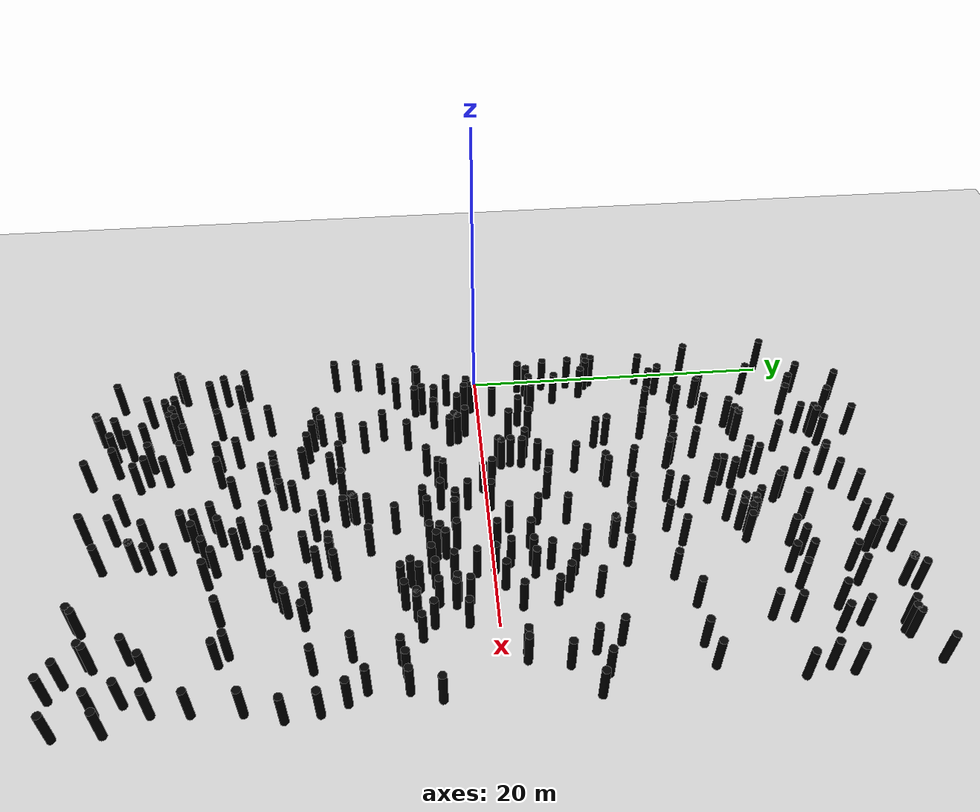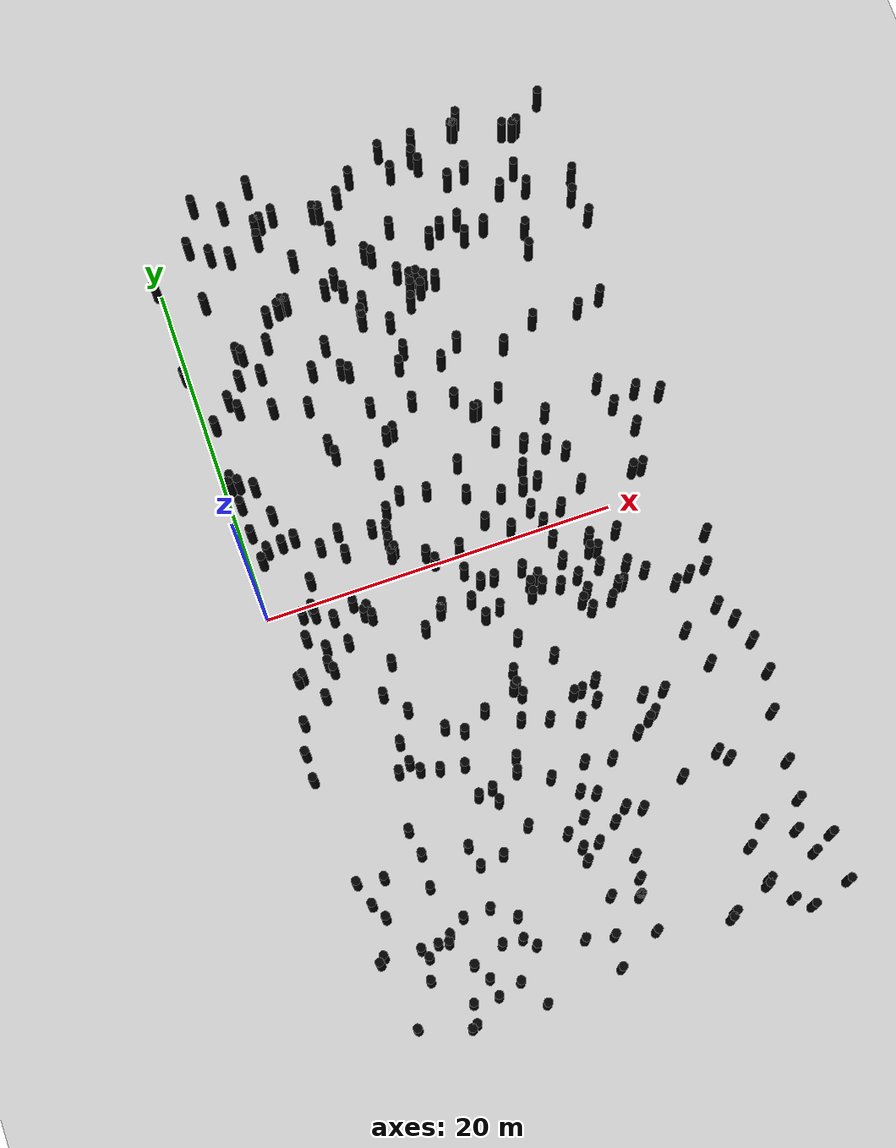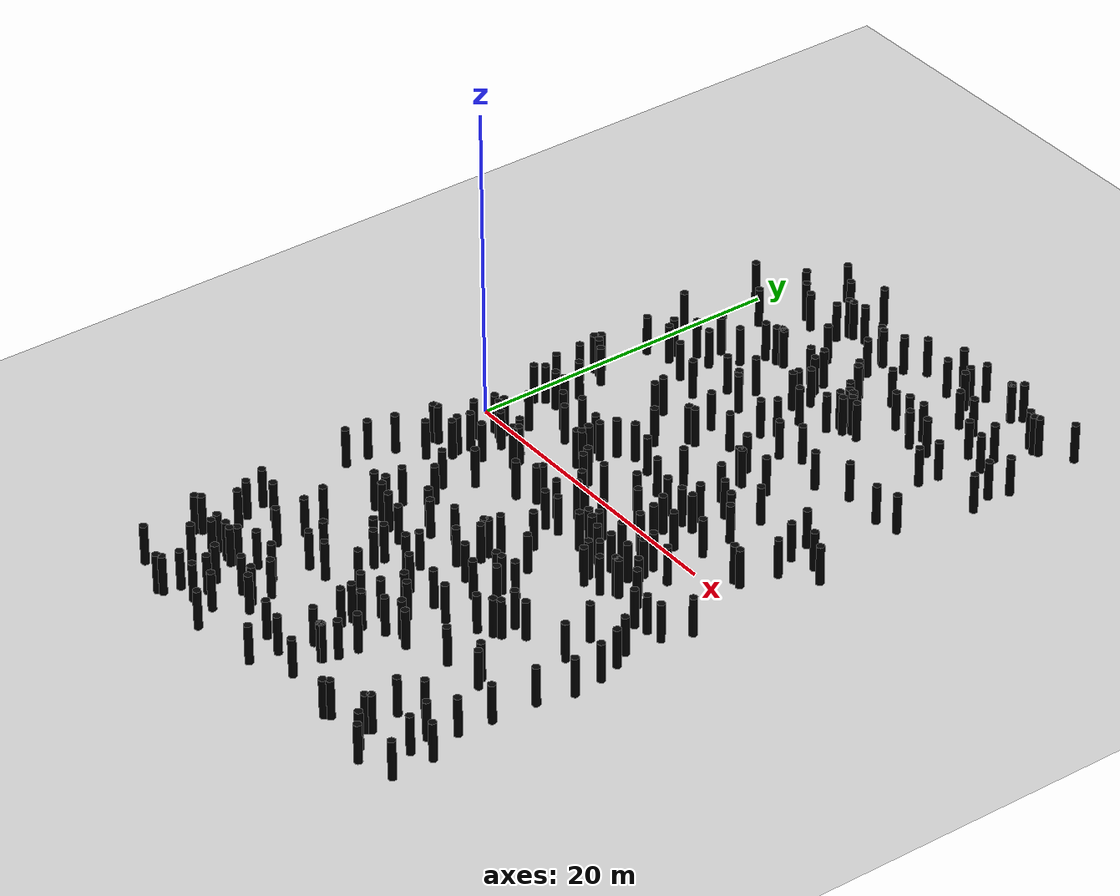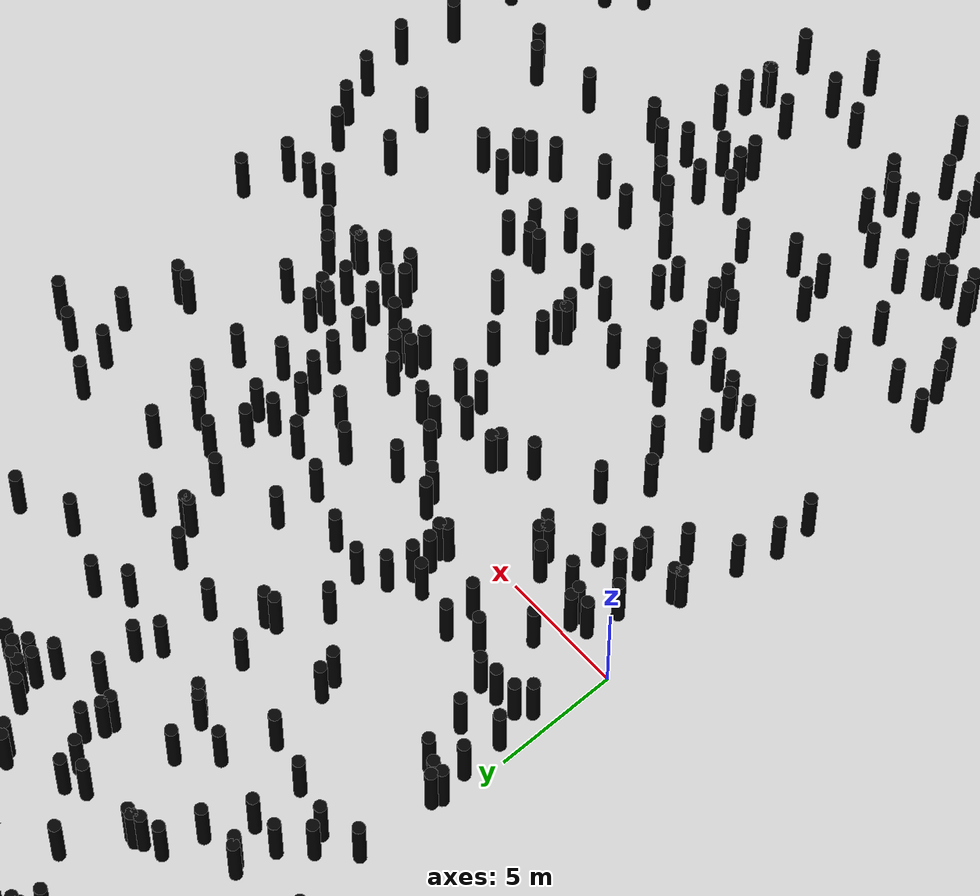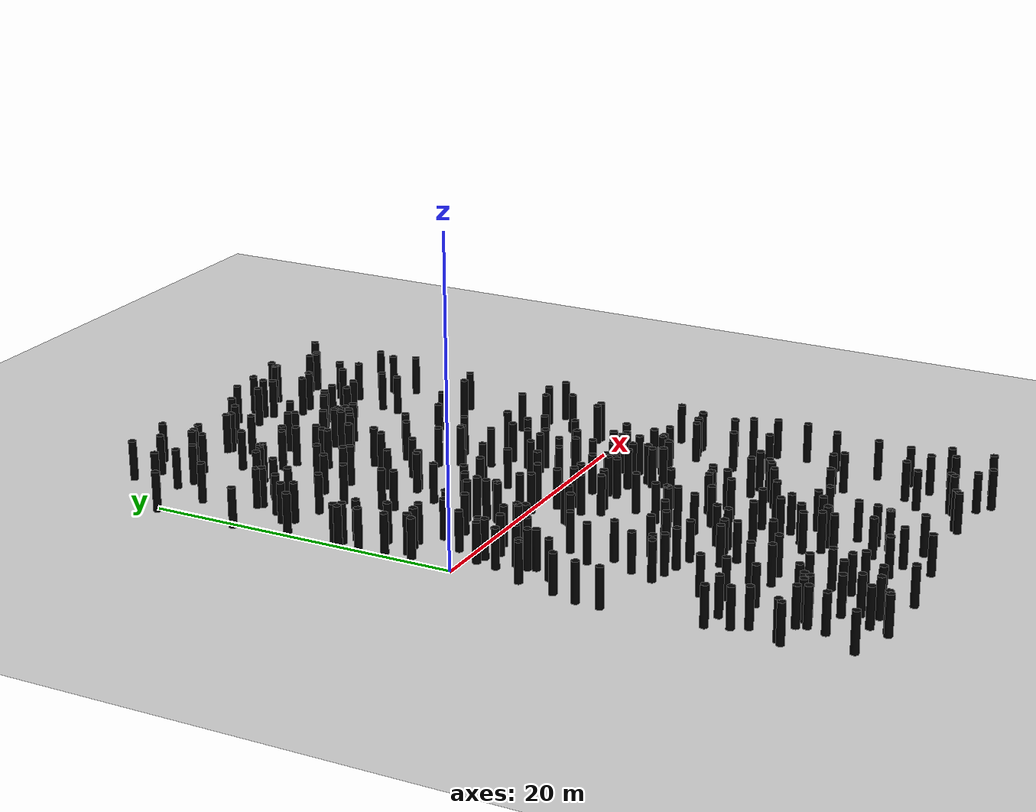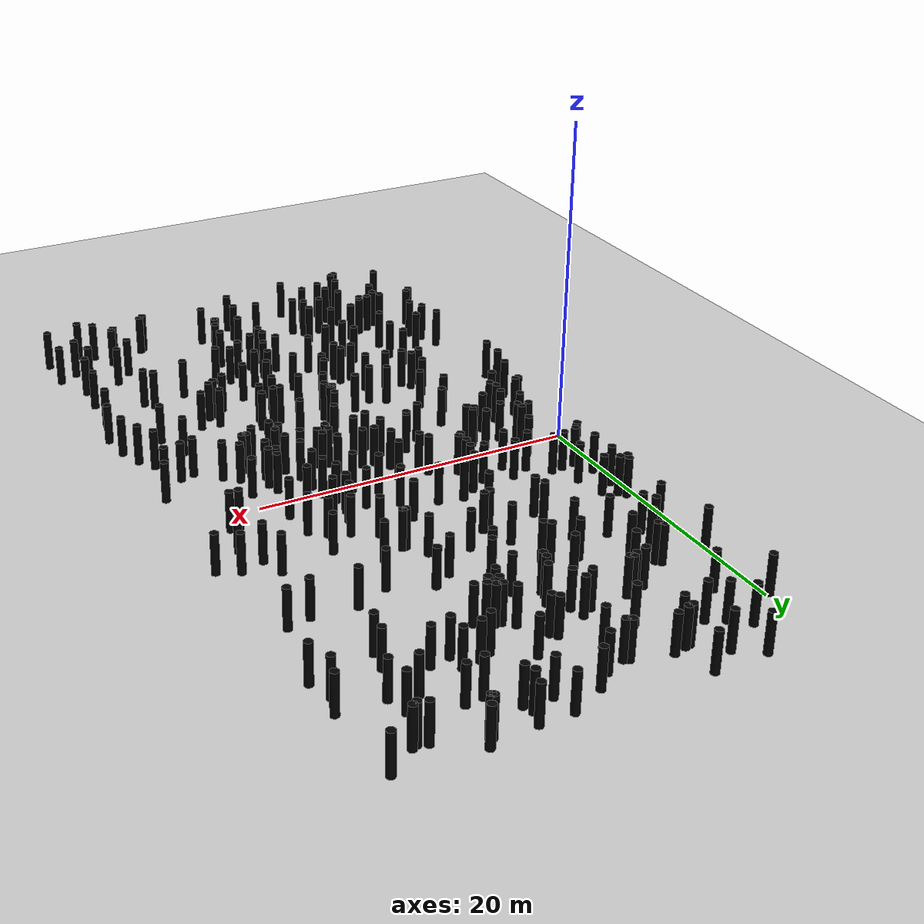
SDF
<sdf version="1.6">
 <world name="high">
  <include><uri>model://ground_plane</uri></include>
  <include><uri>model://pole</uri><name>pole2</name><pose>24.21 -8.48 0 0 0 0</pose></include>
  <include><uri>model://pole</uri><name>pole3</name><pose>23.32 -20.45 0 0 0 0</pose></include>
  <include><uri>model://pole</uri><name>pole5</name><pose>10.68 -22.28 0 0 0 0</pose></include>
  <include><uri>model://pole</uri><name>pole6</name><pose>2.68 13.37 0 0 0 0</pose></include>
  <include><uri>model://pole</uri><name>pole7</name><pose>3.97 -19.74 0 0 0 0</pose></include>
  <include><uri>model://pole</uri><name>pole9</name><pose>12.63 -5.68 0 0 0 0</pose></include>
  <include><uri>model://pole</uri><name>pole10</name><pose>13.85 -15.13 0 0 0 0</pose></include>
  <include><uri>model://pole</uri><name>pole11</name><pose>4.79 23.24 0 0 0 0</pose></include>
  <include><uri>model://pole</uri><name>pole12</name><pose>2.58 -4.17 0 0 0 0</pose></include>
  <include><uri>model://pole</uri><name>pole15</name><pose>20.63 15.55 0 0 0 0</pose></include>
  <include><uri>model://pole</uri><name>pole16</name><pose>16.24 18.42 0 0 0 0</pose></include>
  <include><uri>model://pole</uri><name>pole23</name><pose>6.72 -23.28 0 0 0 0</pose></include>
  <include><uri>model://pole</uri><name>pole24</name><pose>22.85 3.66 0 0 0 0</pose></include>
  <include><uri>model://pole</uri><name>pole26</name><pose>24.92 -11.84 0 0 0 0</pose></include>
  <include><uri>model://pole</uri><name>pole27</name><pose>3.23 -20.01 0 0 0 0</pose></include>
  <include><uri>model://pole</uri><name>pole29</name><pose>9.89 7.73 0 0 0 0</pose></include>
  <include><uri>model://pole</uri><name>pole30</name><pose>15.49 18.03 0 0 0 0</pose></include>
  <include><uri>model://pole</uri><name>pole35</name><pose>0.58 6.37 0 0 0 0</pose></include>
  <include><uri>model://pole</uri><name>pole36</name><pose>15.94 -16.7 0 0 0 0</pose></include>
  <include><uri>model://pole</uri><name>pole38</name><pose>13.09 -17.65 0 0 0 0</pose></include>
  <include><uri>model://pole</uri><name>pole40</name><pose>21.44 -8.26 0 0 0 0</pose></include>
  <include><uri>model://pole</uri><name>pole41</name><pose>3.65 -13.78 0 0 0 0</pose></include>
  <include><uri>model://pole</uri><name>pole42</name><pose>3.93 13.3 0 0 0 0</pose></include>
  <include><uri>model://pole</uri><name>pole48</name><pose>0.59 -4.07 0 0 0 0</pose></include>
  <include><uri>model://pole</uri><name>pole49</name><pose>24.14 24.17 0 0 0 0</pose></include>
  <include><uri>model://pole</uri><name>pole51</name><pose>13.51 15.49 0 0 0 0</pose></include>
  <include><uri>model://pole</uri><name>pole52</name><pose>6.44 -19.11 0 0 0 0</pose></include>
  <include><uri>model://pole</uri><name>pole54</name><pose>0.86 -3.96 0 0 0 0</pose></include>
  <include><uri>model://pole</uri><name>pole56</name><pose>23.81 -21.87 0 0 0 0</pose></include>
  <include><uri>model://pole</uri><name>pole58</name><pose>14.38 -11.08 0 0 0 0</pose></include>
  <include><uri>model://pole</uri><name>pole63</name><pose>12.6 2.98 0 0 0 0</pose></include>
  <include><uri>model://pole</uri><name>pole64</name><pose>17.75 4.28 0 0 0 0</pose></include>
  <include><uri>model://pole</uri><name>pole65</name><pose>10.68 15.58 0 0 0 0</pose></include>
  <include><uri>model://pole</uri><name>pole71</name><pose>17.33 18.55 0 0 0 0</pose></include>
  <include><uri>model://pole</uri><name>pole72</name><pose>9.59 17.4 0 0 0 0</pose></include>
  <include><uri>model://pole</uri><name>pole74</name><pose>15.21 5.55 0 0 0 0</pose></include>
  <include><uri>model://pole</uri><name>pole75</name><pose>1.71 -5.41 0 0 0 0</pose></include>
  <include><uri>model://pole</uri><name>pole76</name><pose>10.18 -12.66 0 0 0 0</pose></include>
  <include><uri>model://pole</uri><name>pole82</name><pose>11.71 -8.12 0 0 0 0</pose></include>
  <include><uri>model://pole</uri><name>pole83</name><pose>1.75 12.39 0 0 0 0</pose></include>
  <include><uri>model://pole</uri><name>pole84</name><pose>24.35 -14.0 0 0 0 0</pose></include>
  <include><uri>model://pole</uri><name>pole87</name><pose>0.56 -16.91 0 0 0 0</pose></include>
  <include><uri>model://pole</uri><name>pole88</name><pose>4.93 -19.1 0 0 0 0</pose></include>
  <include><uri>model://pole</uri><name>pole90</name><pose>13.52 19.35 0 0 0 0</pose></include>
  <include><uri>model://pole</uri><name>pole91</name><pose>4.71 -0.94 0 0 0 0</pose></include>
  <include><uri>model://pole</uri><name>pole95</name><pose>14.28 -16.91 0 0 0 0</pose></include>
  <include><uri>model://pole</uri><name>pole96</name><pose>23.76 -5.17 0 0 0 0</pose></include>
  <include><uri>model://pole</uri><name>pole97</name><pose>11.82 -13.55 0 0 0 0</pose></include>
  <include><uri>model://pole</uri><name>pole101</name><pose>8.74 -13.85 0 0 0 0</pose></include>
  <include><uri>model://pole</uri><name>pole105</name><pose>-0.29 -8.06 0 0 0 0</pose></include>
  <include><uri>model://pole</uri><name>pole106</name><pose>19.24 24.49 0 0 0 0</pose></include>
  <include><uri>model://pole</uri><name>pole110</name><pose>24.45 19.09 0 0 0 0</pose></include>
  <include><uri>model://pole</uri><name>pole111</name><pose>14.19 -3.66 0 0 0 0</pose></include>
  <include><uri>model://pole</uri><name>pole112</name><pose>7.68 -24.82 0 0 0 0</pose></include>
  <include><uri>model://pole</uri><name>pole114</name><pose>12.0 -24.33 0 0 0 0</pose></include>
  <include><uri>model://pole</uri><name>pole117</name><pose>9.14 9.48 0 0 0 0</pose></include>
  <include><uri>model://pole</uri><name>pole121</name><pose>12.01 18.0 0 0 0 0</pose></include>
  <include><uri>model://pole</uri><name>pole124</name><pose>18.7 -23.51 0 0 0 0</pose></include>
  <include><uri>model://pole</uri><name>pole129</name><pose>18.66 17.74 0 0 0 0</pose></include>
  <include><uri>model://pole</uri><name>pole130</name><pose>6.18 21.06 0 0 0 0</pose></include>
  <include><uri>model://pole</uri><name>pole131</name><pose>14.79 -2.74 0 0 0 0</pose></include>
  <include><uri>model://pole</uri><name>pole133</name><pose>1.61 -15.78 0 0 0 0</pose></include>
  <include><uri>model://pole</uri><name>pole135</name><pose>12.23 -22.59 0 0 0 0</pose></include>
  <include><uri>model://pole</uri><name>pole137</name><pose>6.43 7.44 0 0 0 0</pose></include>
  <include><uri>model://pole</uri><name>pole138</name><pose>15.3 -13.61 0 0 0 0</pose></include>
  <include><uri>model://pole</uri><name>pole142</name><pose>2.19 18.37 0 0 0 0</pose></include>
  <include><uri>model://pole</uri><name>pole143</name><pose>16.29 -1.0 0 0 0 0</pose></include>
  <include><uri>model://pole</uri><name>pole144</name><pose>17.9 -12.23 0 0 0 0</pose></include>
  <include><uri>model://pole</uri><name>pole145</name><pose>13.27 14.68 0 0 0 0</pose></include>
  <include><uri>model://pole</uri><name>pole147</name><pose>21.73 19.19 0 0 0 0</pose></include>
  <include><uri>model://pole</uri><name>pole149</name><pose>1.19 3.44 0 0 0 0</pose></include>
  <include><uri>model://pole</uri><name>pole151</name><pose>3.79 -20.13 0 0 0 0</pose></include>
  <include><uri>model://pole</uri><name>pole152</name><pose>14.75 7.37 0 0 0 0</pose></include>
  <include><uri>model://pole</uri><name>pole153</name><pose>19.74 -1.69 0 0 0 0</pose></include>
  <include><uri>model://pole</uri><name>pole156</name><pose>16.08 23.09 0 0 0 0</pose></include>
  <include><uri>model://pole</uri><name>pole157</name><pose>2.4 -3.69 0 0 0 0</pose></include>
  <include><uri>model://pole</uri><name>pole158</name><pose>15.0 15.51 0 0 0 0</pose></include>
  <include><uri>model://pole</uri><name>pole159</name><pose>18.27 6.0 0 0 0 0</pose></include>
  <include><uri>model://pole</uri><name>pole160</name><pose>16.59 2.43 0 0 0 0</pose></include>
  <include><uri>model://pole</uri><name>pole161</name><pose>14.52 -20.17 0 0 0 0</pose></include>
  <include><uri>model://pole</uri><name>pole162</name><pose>5.69 -7.56 0 0 0 0</pose></include>
  <include><uri>model://pole</uri><name>pole165</name><pose>-0.33 -9.55 0 0 0 0</pose></include>
  <include><uri>model://pole</uri><name>pole166</name><pose>22.41 22.94 0 0 0 0</pose></include>
  <include><uri>model://pole</uri><name>pole169</name><pose>11.71 18.34 0 0 0 0</pose></include>
  <include><uri>model://pole</uri><name>pole171</name><pose>10.32 14.51 0 0 0 0</pose></include>
  <include><uri>model://pole</uri><name>pole172</name><pose>24.37 -3.42 0 0 0 0</pose></include>
  <include><uri>model://pole</uri><name>pole179</name><pose>6.58 24.34 0 0 0 0</pose></include>
  <include><uri>model://pole</uri><name>pole181</name><pose>0.83 7.58 0 0 0 0</pose></include>
  <include><uri>model://pole</uri><name>pole182</name><pose>17.04 -5.45 0 0 0 0</pose></include>
  <include><uri>model://pole</uri><name>pole184</name><pose>5.49 -1.97 0 0 0 0</pose></include>
  <include><uri>model://pole</uri><name>pole185</name><pose>9.73 -0.13 0 0 0 0</pose></include>
  <include><uri>model://pole</uri><name>pole186</name><pose>9.06 4.08 0 0 0 0</pose></include>
  <include><uri>model://pole</uri><name>pole187</name><pose>8.1 3.47 0 0 0 0</pose></include>
  <include><uri>model://pole</uri><name>pole193</name><pose>14.13 -2.05 0 0 0 0</pose></include>
  <include><uri>model://pole</uri><name>pole195</name><pose>17.6 21.05 0 0 0 0</pose></include>
  <include><uri>model://pole</uri><name>pole198</name><pose>18.67 21.2 0 0 0 0</pose></include>
  <include><uri>model://pole</uri><name>pole199</name><pose>14.54 7.36 0 0 0 0</pose></include>
  <include><uri>model://pole</uri><name>pole201</name><pose>17.41 10.57 0 0 0 0</pose></include>
  <include><uri>model://pole</uri><name>pole203</name><pose>1.9 -0.69 0 0 0 0</pose></include>
  <include><uri>model://pole</uri><name>pole205</name><pose>17.43 17.47 0 0 0 0</pose></include>
  <include><uri>model://pole</uri><name>pole207</name><pose>3.34 21.02 0 0 0 0</pose></include>
  <include><uri>model://pole</uri><name>pole208</name><pose>3.02 14.96 0 0 0 0</pose></include>
  <include><uri>model://pole</uri><name>pole209</name><pose>3.27 24.22 0 0 0 0</pose></include>
  <include><uri>model://pole</uri><name>pole210</name><pose>7.72 19.18 0 0 0 0</pose></include>
  <include><uri>model://pole</uri><name>pole212</name><pose>9.61 -8.94 0 0 0 0</pose></include>
  <include><uri>model://pole</uri><name>pole213</name><pose>7.81 -13.21 0 0 0 0</pose></include>
  <include><uri>model://pole</uri><name>pole214</name><pose>14.38 24.01 0 0 0 0</pose></include>
  <include><uri>model://pole</uri><name>pole218</name><pose>11.32 -10.05 0 0 0 0</pose></include>
  <include><uri>model://pole</uri><name>pole226</name><pose>8.03 -3.6 0 0 0 0</pose></include>
  <include><uri>model://pole</uri><name>pole227</name><pose>12.7 4.78 0 0 0 0</pose></include>
  <include><uri>model://pole</uri><name>pole233</name><pose>8.65 11.84 0 0 0 0</pose></include>
  <include><uri>model://pole</uri><name>pole234</name><pose>11.78 13.87 0 0 0 0</pose></include>
  <include><uri>model://pole</uri><name>pole236</name><pose>2.24 -21.72 0 0 0 0</pose></include>
  <include><uri>model://pole</uri><name>pole238</name><pose>20.84 16.82 0 0 0 0</pose></include>
  <include><uri>model://pole</uri><name>pole239</name><pose>20.83 -22.72 0 0 0 0</pose></include>
  <include><uri>model://pole</uri><name>pole241</name><pose>16.4 -2.33 0 0 0 0</pose></include>
  <include><uri>model://pole</uri><name>pole242</name><pose>12.18 -18.4 0 0 0 0</pose></include>
  <include><uri>model://pole</uri><name>pole243</name><pose>7.66 1.79 0 0 0 0</pose></include>
  <include><uri>model://pole</uri><name>pole246</name><pose>4.68 -6.33 0 0 0 0</pose></include>
  <include><uri>model://pole</uri><name>pole248</name><pose>21.57 22.99 0 0 0 0</pose></include>
  <include><uri>model://pole</uri><name>pole254</name><pose>9.99 21.52 0 0 0 0</pose></include>
  <include><uri>model://pole</uri><name>pole256</name><pose>12.81 -10.5 0 0 0 0</pose></include>
  <include><uri>model://pole</uri><name>pole258</name><pose>16.2 8.0 0 0 0 0</pose></include>
  <include><uri>model://pole</uri><name>pole259</name><pose>13.08 1.18 0 0 0 0</pose></include>
  <include><uri>model://pole</uri><name>pole262</name><pose>13.78 10.84 0 0 0 0</pose></include>
  <include><uri>model://pole</uri><name>pole263</name><pose>7.64 -11.41 0 0 0 0</pose></include>
  <include><uri>model://pole</uri><name>pole264</name><pose>13.65 16.06 0 0 0 0</pose></include>
  <include><uri>model://pole</uri><name>pole265</name><pose>1.69 -2.02 0 0 0 0</pose></include>
  <include><uri>model://pole</uri><name>pole266</name><pose>22.76 -24.51 0 0 0 0</pose></include>
  <include><uri>model://pole</uri><name>pole270</name><pose>16.05 3.4 0 0 0 0</pose></include>
  <include><uri>model://pole</uri><name>pole272</name><pose>25.0 -21.23 0 0 0 0</pose></include>
  <include><uri>model://pole</uri><name>pole274</name><pose>17.08 -12.74 0 0 0 0</pose></include>
  <include><uri>model://pole</uri><name>pole275</name><pose>3.26 14.71 0 0 0 0</pose></include>
  <include><uri>model://pole</uri><name>pole277</name><pose>3.48 -1.39 0 0 0 0</pose></include>
  <include><uri>model://pole</uri><name>pole281</name><pose>19.66 -3.64 0 0 0 0</pose></include>
  <include><uri>model://pole</uri><name>pole282</name><pose>14.26 -3.06 0 0 0 0</pose></include>
  <include><uri>model://pole</uri><name>pole285</name><pose>6.43 -21.1 0 0 0 0</pose></include>
  <include><uri>model://pole</uri><name>pole286</name><pose>2.57 -2.88 0 0 0 0</pose></include>
  <include><uri>model://pole</uri><name>pole289</name><pose>6.26 8.18 0 0 0 0</pose></include>
  <include><uri>model://pole</uri><name>pole291</name><pose>15.57 -10.33 0 0 0 0</pose></include>
  <include><uri>model://pole</uri><name>pole292</name><pose>21.71 -19.43 0 0 0 0</pose></include>
  <include><uri>model://pole</uri><name>pole293</name><pose>0.61 11.25 0 0 0 0</pose></include>
  <include><uri>model://pole</uri><name>pole294</name><pose>18.21 -3.3 0 0 0 0</pose></include>
  <include><uri>model://pole</uri><name>pole295</name><pose>0.75 2.93 0 0 0 0</pose></include>
  <include><uri>model://pole</uri><name>pole296</name><pose>3.77 -17.03 0 0 0 0</pose></include>
  <include><uri>model://pole</uri><name>pole297</name><pose>14.65 22.55 0 0 0 0</pose></include>
  <include><uri>model://pole</uri><name>pole299</name><pose>8.3 12.13 0 0 0 0</pose></include>
  <include><uri>model://pole</uri><name>pole300</name><pose>7.28 -9.11 0 0 0 0</pose></include>
  <include><uri>model://pole</uri><name>pole302</name><pose>18.78 23.92 0 0 0 0</pose></include>
  <include><uri>model://pole</uri><name>pole305</name><pose>7.56 -21.2 0 0 0 0</pose></include>
  <include><uri>model://pole</uri><name>pole306</name><pose>10.23 20.14 0 0 0 0</pose></include>
  <include><uri>model://pole</uri><name>pole311</name><pose>9.79 -15.6 0 0 0 0</pose></include>
  <include><uri>model://pole</uri><name>pole312</name><pose>18.02 -10.86 0 0 0 0</pose></include>
  <include><uri>model://pole</uri><name>pole313</name><pose>14.32 0.33 0 0 0 0</pose></include>
  <include><uri>model://pole</uri><name>pole316</name><pose>14.23 -21.04 0 0 0 0</pose></include>
  <include><uri>model://pole</uri><name>pole321</name><pose>24.03 17.84 0 0 0 0</pose></include>
  <include><uri>model://pole</uri><name>pole324</name><pose>0.5 7.98 0 0 0 0</pose></include>
  <include><uri>model://pole</uri><name>pole328</name><pose>21.6 6.68 0 0 0 0</pose></include>
  <include><uri>model://pole</uri><name>pole330</name><pose>8.89 16.96 0 0 0 0</pose></include>
  <include><uri>model://pole</uri><name>pole332</name><pose>9.12 -2.93 0 0 0 0</pose></include>
  <include><uri>model://pole</uri><name>pole337</name><pose>16.3 22.5 0 0 0 0</pose></include>
  <include><uri>model://pole</uri><name>pole338</name><pose>11.26 22.06 0 0 0 0</pose></include>
  <include><uri>model://pole</uri><name>pole343</name><pose>10.39 -11.88 0 0 0 0</pose></include>
  <include><uri>model://pole</uri><name>pole344</name><pose>2.51 -0.45 0 0 0 0</pose></include>
  <include><uri>model://pole</uri><name>pole346</name><pose>8.49 5.87 0 0 0 0</pose></include>
  <include><uri>model://pole</uri><name>pole347</name><pose>0.34 7.6 0 0 0 0</pose></include>
  <include><uri>model://pole</uri><name>pole348</name><pose>16.89 -3.45 0 0 0 0</pose></include>
  <include><uri>model://pole</uri><name>pole349</name><pose>2.06 3.54 0 0 0 0</pose></include>
  <include><uri>model://pole</uri><name>pole350</name><pose>10.36 14.9 0 0 0 0</pose></include>
  <include><uri>model://pole</uri><name>pole353</name><pose>6.31 -11.16 0 0 0 0</pose></include>
  <include><uri>model://pole</uri><name>pole354</name><pose>3.52 -24.79 0 0 0 0</pose></include>
  <include><uri>model://pole</uri><name>pole355</name><pose>6.62 21.99 0 0 0 0</pose></include>
  <include><uri>model://pole</uri><name>pole356</name><pose>10.92 -2.86 0 0 0 0</pose></include>
  <include><uri>model://pole</uri><name>pole358</name><pose>13.08 16.57 0 0 0 0</pose></include>
  <include><uri>model://pole</uri><name>pole359</name><pose>11.96 12.12 0 0 0 0</pose></include>
  <include><uri>model://pole</uri><name>pole363</name><pose>7.81 1.19 0 0 0 0</pose></include>
  <include><uri>model://pole</uri><name>pole366</name><pose>24.71 -9.92 0 0 0 0</pose></include>
  <include><uri>model://pole</uri><name>pole367</name><pose>0.29 -19.73 0 0 0 0</pose></include>
  <include><uri>model://pole</uri><name>pole370</name><pose>14.5 -9.58 0 0 0 0</pose></include>
  <include><uri>model://pole</uri><name>pole371</name><pose>23.51 5.69 0 0 0 0</pose></include>
  <include><uri>model://pole</uri><name>pole373</name><pose>12.73 -20.57 0 0 0 0</pose></include>
  <include><uri>model://pole</uri><name>pole374</name><pose>2.56 -0.86 0 0 0 0</pose></include>
  <include><uri>model://pole</uri><name>pole375</name><pose>16.59 4.74 0 0 0 0</pose></include>
  <include><uri>model://pole</uri><name>pole378</name><pose>9.47 7.6 0 0 0 0</pose></include>
  <include><uri>model://pole</uri><name>pole381</name><pose>9.4 0.45 0 0 0 0</pose></include>
  <include><uri>model://pole</uri><name>pole387</name><pose>19.11 -4.59 0 0 0 0</pose></include>
  <include><uri>model://pole</uri><name>pole388</name><pose>12.28 23.01 0 0 0 0</pose></include>
  <include><uri>model://pole</uri><name>pole391</name><pose>1.04 -17.8 0 0 0 0</pose></include>
  <include><uri>model://pole</uri><name>pole393</name><pose>4.02 2.63 0 0 0 0</pose></include>
  <include><uri>model://pole</uri><name>pole395</name><pose>14.96 11.59 0 0 0 0</pose></include>
  <include><uri>model://pole</uri><name>pole399</name><pose>9.83 16.53 0 0 0 0</pose></include>
  <include><uri>model://pole</uri><name>pole400</name><pose>8.14 -21.76 0 0 0 0</pose></include>
  <include><uri>model://pole</uri><name>pole401</name><pose>9.28 -2.62 0 0 0 0</pose></include>
  <include><uri>model://pole</uri><name>pole404</name><pose>15.07 -16.31 0 0 0 0</pose></include>
  <include><uri>model://pole</uri><name>pole405</name><pose>8.23 -9.65 0 0 0 0</pose></include>
  <include><uri>model://pole</uri><name>pole406</name><pose>14.19 -7.24 0 0 0 0</pose></include>
  <include><uri>model://pole</uri><name>pole408</name><pose>2.13 11.72 0 0 0 0</pose></include>
  <include><uri>model://pole</uri><name>pole411</name><pose>5.2 1.89 0 0 0 0</pose></include>
  <include><uri>model://pole</uri><name>pole412</name><pose>6.72 12.52 0 0 0 0</pose></include>
  <include><uri>model://pole</uri><name>pole415</name><pose>25.0 -23.86 0 0 0 0</pose></include>
  <include><uri>model://pole</uri><name>pole416</name><pose>3.9 -15.22 0 0 0 0</pose></include>
  <include><uri>model://pole</uri><name>pole418</name><pose>15.71 1.04 0 0 0 0</pose></include>
  <include><uri>model://pole</uri><name>pole419</name><pose>22.09 -10.4 0 0 0 0</pose></include>
  <include><uri>model://pole</uri><name>pole420</name><pose>11.79 -7.35 0 0 0 0</pose></include>
  <include><uri>model://pole</uri><name>pole423</name><pose>2.8 3.63 0 0 0 0</pose></include>
  <include><uri>model://pole</uri><name>pole426</name><pose>6.3 21.92 0 0 0 0</pose></include>
  <include><uri>model://pole</uri><name>pole429</name><pose>9.69 21.65 0 0 0 0</pose></include>
  <include><uri>model://pole</uri><name>pole431</name><pose>-0.0 -20.01 0 0 0 0</pose></include>
  <include><uri>model://pole</uri><name>pole432</name><pose>8.04 -16.65 0 0 0 0</pose></include>
  <include><uri>model://pole</uri><name>pole435</name><pose>24.18 -16.8 0 0 0 0</pose></include>
  <include><uri>model://pole</uri><name>pole436</name><pose>4.67 -21.68 0 0 0 0</pose></include>
  <include><uri>model://pole</uri><name>pole437</name><pose>11.66 -16.7 0 0 0 0</pose></include>
  <include><uri>model://pole</uri><name>pole438</name><pose>11.51 -8.28 0 0 0 0</pose></include>
  <include><uri>model://pole</uri><name>pole439</name><pose>12.78 -16.14 0 0 0 0</pose></include>
  <include><uri>model://pole</uri><name>pole442</name><pose>18.82 1.48 0 0 0 0</pose></include>
  <include><uri>model://pole</uri><name>pole444</name><pose>17.1 -4.39 0 0 0 0</pose></include>
  <include><uri>model://pole</uri><name>pole445</name><pose>18.22 -1.52 0 0 0 0</pose></include>
  <include><uri>model://pole</uri><name>pole447</name><pose>5.89 10.62 0 0 0 0</pose></include>
  <include><uri>model://pole</uri><name>pole450</name><pose>6.69 -16.8 0 0 0 0</pose></include>
  <include><uri>model://pole</uri><name>pole452</name><pose>8.63 -13.07 0 0 0 0</pose></include>
  <include><uri>model://pole</uri><name>pole454</name><pose>6.3 16.88 0 0 0 0</pose></include>
  <include><uri>model://pole</uri><name>pole455</name><pose>13.76 8.51 0 0 0 0</pose></include>
  <include><uri>model://pole</uri><name>pole456</name><pose>7.59 1.0 0 0 0 0</pose></include>
  <include><uri>model://pole</uri><name>pole458</name><pose>18.25 -5.25 0 0 0 0</pose></include>
  <include><uri>model://pole</uri><name>pole461</name><pose>11.07 -1.19 0 0 0 0</pose></include>
  <include><uri>model://pole</uri><name>pole462</name><pose>-0.2 19.98 0 0 0 0</pose></include>
  <include><uri>model://pole</uri><name>pole465</name><pose>6.4 -15.62 0 0 0 0</pose></include>
  <include><uri>model://pole</uri><name>pole469</name><pose>14.41 -23.09 0 0 0 0</pose></include>
  <include><uri>model://pole</uri><name>pole477</name><pose>6.54 16.82 0 0 0 0</pose></include>
  <include><uri>model://pole</uri><name>pole479</name><pose>15.83 -3.63 0 0 0 0</pose></include>
  <include><uri>model://pole</uri><name>pole481</name><pose>11.84 -8.76 0 0 0 0</pose></include>
  <include><uri>model://pole</uri><name>pole482</name><pose>7.86 13.74 0 0 0 0</pose></include>
  <include><uri>model://pole</uri><name>pole483</name><pose>5.38 -23.63 0 0 0 0</pose></include>
  <include><uri>model://pole</uri><name>pole485</name><pose>4.15 -10.63 0 0 0 0</pose></include>
  <include><uri>model://pole</uri><name>pole487</name><pose>21.82 1.37 0 0 0 0</pose></include>
  <include><uri>model://pole</uri><name>pole488</name><pose>10.56 3.8 0 0 0 0</pose></include>
  <include><uri>model://pole</uri><name>pole491</name><pose>12.26 -3.73 0 0 0 0</pose></include>
  <include><uri>model://pole</uri><name>pole492</name><pose>22.06 5.21 0 0 0 0</pose></include>
  <include><uri>model://pole</uri><name>pole493</name><pose>14.67 -18.97 0 0 0 0</pose></include>
  <include><uri>model://pole</uri><name>pole495</name><pose>18.55 -15.76 0 0 0 0</pose></include>
  <include><uri>model://pole</uri><name>pole498</name><pose>22.13 22.8 0 0 0 0</pose></include>
  <include><uri>model://pole</uri><name>pole499</name><pose>22.71 -5.31 0 0 0 0</pose></include>
  <include><uri>model://pole</uri><name>pole500</name><pose>23.5 11.61 0 0 0 0</pose></include>
  <include><uri>model://pole</uri><name>pole502</name><pose>14.01 16.03 0 0 0 0</pose></include>
  <include><uri>model://pole</uri><name>pole503</name><pose>14.43 2.33 0 0 0 0</pose></include>
  <include><uri>model://pole</uri><name>pole507</name><pose>5.68 -4.76 0 0 0 0</pose></include>
  <include><uri>model://pole</uri><name>pole508</name><pose>18.65 3.53 0 0 0 0</pose></include>
  <include><uri>model://pole</uri><name>pole509</name><pose>5.28 -10.89 0 0 0 0</pose></include>
  <include><uri>model://pole</uri><name>pole510</name><pose>11.26 0.23 0 0 0 0</pose></include>
  <include><uri>model://pole</uri><name>pole511</name><pose>5.14 -1.67 0 0 0 0</pose></include>
  <include><uri>model://pole</uri><name>pole514</name><pose>7.78 2.5 0 0 0 0</pose></include>
  <include><uri>model://pole</uri><name>pole517</name><pose>15.85 -9.26 0 0 0 0</pose></include>
  <include><uri>model://pole</uri><name>pole518</name><pose>24.03 -18.92 0 0 0 0</pose></include>
  <include><uri>model://pole</uri><name>pole519</name><pose>5.23 -22.6 0 0 0 0</pose></include>
  <include><uri>model://pole</uri><name>pole521</name><pose>0.62 4.64 0 0 0 0</pose></include>
  <include><uri>model://pole</uri><name>pole522</name><pose>5.35 -1.45 0 0 0 0</pose></include>
  <include><uri>model://pole</uri><name>pole523</name><pose>11.46 9.05 0 0 0 0</pose></include>
  <include><uri>model://pole</uri><name>pole524</name><pose>14.96 -9.55 0 0 0 0</pose></include>
  <include><uri>model://pole</uri><name>pole525</name><pose>7.02 2.75 0 0 0 0</pose></include>
  <include><uri>model://pole</uri><name>pole527</name><pose>16.39 24.06 0 0 0 0</pose></include>
  <include><uri>model://pole</uri><name>pole528</name><pose>4.71 -9.11 0 0 0 0</pose></include>
  <include><uri>model://pole</uri><name>pole530</name><pose>15.73 2.36 0 0 0 0</pose></include>
  <include><uri>model://pole</uri><name>pole531</name><pose>16.11 0.09 0 0 0 0</pose></include>
  <include><uri>model://pole</uri><name>pole534</name><pose>19.2 -10.96 0 0 0 0</pose></include>
  <include><uri>model://pole</uri><name>pole535</name><pose>12.5 -2.07 0 0 0 0</pose></include>
  <include><uri>model://pole</uri><name>pole537</name><pose>22.08 11.27 0 0 0 0</pose></include>
  <include><uri>model://pole</uri><name>pole538</name><pose>5.29 16.46 0 0 0 0</pose></include>
  <include><uri>model://pole</uri><name>pole542</name><pose>24.52 16.37 0 0 0 0</pose></include>
  <include><uri>model://pole</uri><name>pole543</name><pose>0.15 -6.45 0 0 0 0</pose></include>
  <include><uri>model://pole</uri><name>pole544</name><pose>21.89 -23.84 0 0 0 0</pose></include>
  <include><uri>model://pole</uri><name>pole545</name><pose>19.44 11.46 0 0 0 0</pose></include>
  <include><uri>model://pole</uri><name>pole549</name><pose>7.41 22.22 0 0 0 0</pose></include>
  <include><uri>model://pole</uri><name>pole550</name><pose>14.17 -21.08 0 0 0 0</pose></include>
  <include><uri>model://pole</uri><name>pole551</name><pose>20.48 -4.34 0 0 0 0</pose></include>
  <include><uri>model://pole</uri><name>pole552</name><pose>11.38 -3.97 0 0 0 0</pose></include>
  <include><uri>model://pole</uri><name>pole554</name><pose>0.14 -15.56 0 0 0 0</pose></include>
  <include><uri>model://pole</uri><name>pole555</name><pose>21.41 20.47 0 0 0 0</pose></include>
  <include><uri>model://pole</uri><name>pole560</name><pose>14.04 15.25 0 0 0 0</pose></include>
  <include><uri>model://pole</uri><name>pole564</name><pose>2.9 1.0 0 0 0 0</pose></include>
  <include><uri>model://pole</uri><name>pole566</name><pose>2.29 -19.98 0 0 0 0</pose></include>
  <include><uri>model://pole</uri><name>pole567</name><pose>23.56 -7.46 0 0 0 0</pose></include>
  <include><uri>model://pole</uri><name>pole568</name><pose>11.44 11.29 0 0 0 0</pose></include>
  <include><uri>model://pole</uri><name>pole569</name><pose>5.18 3.17 0 0 0 0</pose></include>
  <include><uri>model://pole</uri><name>pole571</name><pose>11.74 -1.99 0 0 0 0</pose></include>
  <include><uri>model://pole</uri><name>pole574</name><pose>2.04 5.25 0 0 0 0</pose></include>
  <include><uri>model://pole</uri><name>pole575</name><pose>3.81 -2.96 0 0 0 0</pose></include>
  <include><uri>model://pole</uri><name>pole577</name><pose>20.78 -15.09 0 0 0 0</pose></include>
  <include><uri>model://pole</uri><name>pole580</name><pose>14.35 15.71 0 0 0 0</pose></include>
  <include><uri>model://pole</uri><name>pole581</name><pose>12.18 -17.65 0 0 0 0</pose></include>
  <include><uri>model://pole</uri><name>pole583</name><pose>24.76 5.11 0 0 0 0</pose></include>
  <include><uri>model://pole</uri><name>pole584</name><pose>18.0 -2.23 0 0 0 0</pose></include>
  <include><uri>model://pole</uri><name>pole585</name><pose>18.29 -11.95 0 0 0 0</pose></include>
  <include><uri>model://pole</uri><name>pole586</name><pose>-0.14 14.58 0 0 0 0</pose></include>
  <include><uri>model://pole</uri><name>pole587</name><pose>4.0 -23.57 0 0 0 0</pose></include>
  <include><uri>model://pole</uri><name>pole590</name><pose>18.84 -4.58 0 0 0 0</pose></include>
  <include><uri>model://pole</uri><name>pole592</name><pose>6.02 16.7 0 0 0 0</pose></include>
  <include><uri>model://pole</uri><name>pole594</name><pose>17.32 0.59 0 0 0 0</pose></include>
  <include><uri>model://pole</uri><name>pole597</name><pose>18.42 -2.33 0 0 0 0</pose></include>
  <include><uri>model://pole</uri><name>pole599</name><pose>1.61 7.12 0 0 0 0</pose></include>
  <include><uri>model://pole</uri><name>pole600</name><pose>18.89 23.85 0 0 0 0</pose></include>
  <include><uri>model://pole</uri><name>pole603</name><pose>13.06 -14.75 0 0 0 0</pose></include>
  <include><uri>model://pole</uri><name>pole605</name><pose>4.37 20.53 0 0 0 0</pose></include>
  <include><uri>model://pole</uri><name>pole608</name><pose>4.85 -10.33 0 0 0 0</pose></include>
  <include><uri>model://pole</uri><name>pole609</name><pose>13.8 -13.32 0 0 0 0</pose></include>
  <include><uri>model://pole</uri><name>pole611</name><pose>18.41 -23.78 0 0 0 0</pose></include>
  <include><uri>model://pole</uri><name>pole613</name><pose>0.8 -23.88 0 0 0 0</pose></include>
  <include><uri>model://pole</uri><name>pole614</name><pose>3.83 -24.63 0 0 0 0</pose></include>
  <include><uri>model://pole</uri><name>pole617</name><pose>4.81 14.92 0 0 0 0</pose></include>
  <include><uri>model://pole</uri><name>pole619</name><pose>16.68 -4.87 0 0 0 0</pose></include>
  <include><uri>model://pole</uri><name>pole620</name><pose>2.29 21.85 0 0 0 0</pose></include>
  <include><uri>model://pole</uri><name>pole623</name><pose>14.87 -3.29 0 0 0 0</pose></include>
  <include><uri>model://pole</uri><name>pole624</name><pose>21.05 -22.45 0 0 0 0</pose></include>
  <include><uri>model://pole</uri><name>pole625</name><pose>20.25 19.53 0 0 0 0</pose></include>
  <include><uri>model://pole</uri><name>pole626</name><pose>21.86 -5.56 0 0 0 0</pose></include>
  <include><uri>model://pole</uri><name>pole627</name><pose>2.55 -20.55 0 0 0 0</pose></include>
  <include><uri>model://pole</uri><name>pole628</name><pose>22.36 1.35 0 0 0 0</pose></include>
  <include><uri>model://pole</uri><name>pole630</name><pose>20.64 -20.5 0 0 0 0</pose></include>
  <include><uri>model://pole</uri><name>pole633</name><pose>21.28 -15.63 0 0 0 0</pose></include>
  <include><uri>model://pole</uri><name>pole634</name><pose>7.68 -20.0 0 0 0 0</pose></include>
  <include><uri>model://pole</uri><name>pole636</name><pose>3.96 11.16 0 0 0 0</pose></include>
 </world>
</sdf>
